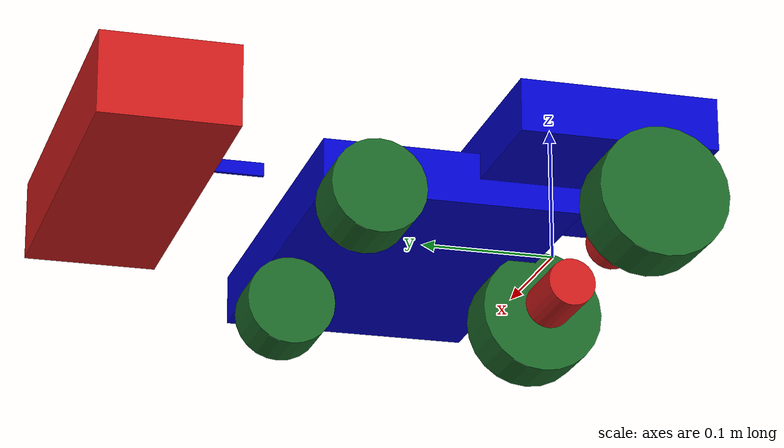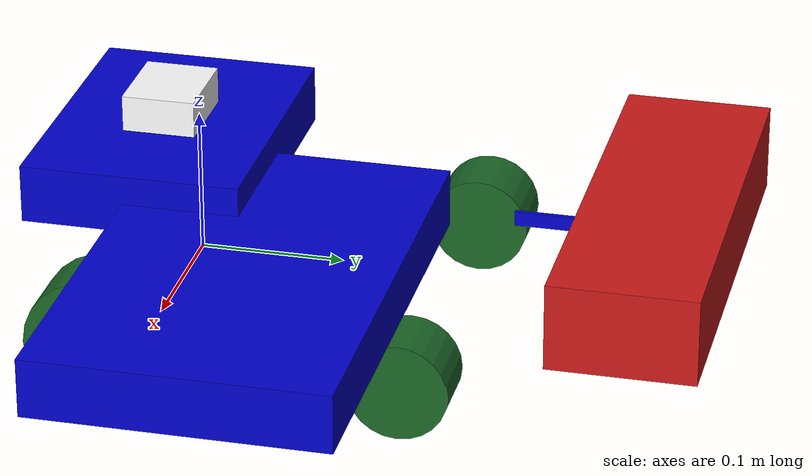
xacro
<?xml version="1.0"?>
<!-- Description of the LEMOWER robot with XACRO to avoid repeating data -->
<robot xmlns:xacro="http://www.ros.org/wiki/xacro"  name="lemower">

    <!-- This will include all the contents of example_include.xacro first. Go check it out! -->
    <xacro:include filename="lemower_include.xacro" />

    <link name="base_link">
    </link>

    <!-- Lien entre base et robot_base l'origine de robot_base est arrière centre bas -->
    <joint name="robot_base_joint" type="fixed">
        <parent link="base_link"/>
        <child link="robot_base"/>
        <origin xyz="0 0.065 0.0365" rpy="0 0 0"/>
    </joint>
    <link name="robot_base">
        <visual>
            <geometry>
                <box size="0.32 0.2 0.04"/>
            </geometry>
            <material name="blue"/>
            <origin xyz="0.16 0.01 0.02" rpy="0 0 0"/>
        </visual>
        <collision>
            <geometry>
                <box size="0.32 0.2 0.04"/>
            </geometry>
        </collision>
        <xacro:inertial_box mass="1.5" x="0.32" y="0.2" z="0.04">
            <origin xyz="0 0 0.02" rpy="0 0 0"/>
        </xacro:inertial_box>
    </link>
    <joint name="base_to_elec" type="fixed">
        <parent link="robot_base"/>
        <child link="electronics"/>
        <origin xyz="0 -0.085 0.04" rpy="0 0 0"/>
    </joint>
    <link name="electronics">
        <visual>
            <geometry>
                <box size="0.2 0.15 0.04"/>
            </geometry>
            <origin xyz="0 0 0" rpy="0 0 0"/>
            <material name="blue"/>
        </visual>
        <collision>
            <origin xyz="0 0 0" rpy="0 0 0"/>
            <geometry>
                <box size="0.2 0.15 0.04"/>
            </geometry>
        </collision>
        <xacro:inertial_box mass="0.4" x="0.2" y="0.15" z="0.04">
            <origin xyz="0 0 0.02" rpy="0 0 0"/>
        </xacro:inertial_box>
    </link>
    <joint name="elec_to_lidar" type="fixed">
        <parent link="electronics"/>
        <child link="lidar"/>
        <origin xyz="0 0 0.03" rpy="0 0 0"/>
    </joint>
    <link name="lidar">
        <visual>
            <geometry>
                <box size="0.06 0.05 0.03"/>
            </geometry>
            <origin xyz="0 0 0" rpy="0 0 0"/>
            <material name="black"/>
        </visual>
        <collision>
            <origin xyz="0 0 0" rpy="0 0 0"/>
            <geometry>
                <box size="0.06 0.05 0.03"/>
            </geometry>
        </collision>
        <xacro:inertial_box mass="0.1" x="0.06" y="0.05" z="0.03">
            <origin xyz="0 0 0.075" rpy="0 0 0"/>
        </xacro:inertial_box>
    </link>
    <joint name="robot_base_to_bras_decoupe" type="revolute">
        <parent link="robot_base"/>
        <child link="bras decoupe"/>
        <origin xyz="0 0.160 0.01" rpy="0 0 0"/>
        <limit effort="1000.0" lower="-0.548" upper="0.548" velocity="0.5"/>
        <axis xyz="1 0 0"/>
    </joint>
    <link name="bras decoupe">
        <visual>
            <geometry>
                <box size="0.003 0.06 0.01"/>
            </geometry>
            <origin xyz="0 0.025 0" rpy="0 0 0"/>
            <material name="blue"/>
        </visual>
        <collision>
            <origin xyz="0 0.025 0" rpy="0 0 0"/>
            <geometry>
                <box size="0.003 0.06 0.01"/>
            </geometry>
        </collision>
        <xacro:inertial_box mass="0.05" x="0.003" y="0.06" z="0.01">
            <origin xyz="0.0015 0.03 0.005" rpy="0 0 0"/>
        </xacro:inertial_box>
    </link>
    <joint name="bras_decoupe_to_decoupe" type="revolute">
        <parent link="bras decoupe"/>
        <child link="decoupe"/>
        <axis xyz="1 0 0"/>
        <origin xyz="0 0.05 0" rpy="0 0 0"/>
        <limit effort="1000.0" lower="-0.548" upper="0.548" velocity="0.5"/>
    </joint>
    <link name="decoupe">
        <visual>
            <geometry>
                <box size="0.3 0.1 0.06"/>
            </geometry>
            <origin xyz="0 0.045 0" rpy="0 0 0"/>
            <material name="red"/>
        </visual>
        <collision>
            <origin xyz="0 0.045 0" rpy="0 0 0"/>
            <geometry>
                <box size="0.3 0.1 0.06"/>
            </geometry>
        </collision>
        <xacro:inertial_box mass="0.5" x="0.3" y="0.1" z="0.06">
            <origin xyz="0.15 0.05 0.03" rpy="0 0 0"/>
        </xacro:inertial_box>
    </link>
    <joint name="robot_base_to_motor_gauche" type="fixed">
        <parent link="robot_base"/>
        <child link="motor gauche"/>
        <origin xyz="-0.07 -0.095 -0.039" rpy="0 1.5708 0"/>
    </joint>
    <link name="motor gauche">
        <visual>
            <geometry>
                <cylinder length="0.057" radius="0.0185"/>
            </geometry>
            <material name="red"/>
        </visual>
        <collision>
            <geometry>
                <cylinder length="0.057" radius="0.0185"/>
            </geometry>
        </collision>
        <xacro:inertial_cylinder mass="0.15" length="0.057" radius="0.0185">
            <origin xyz="0 0 0" rpy="0 0 0"/>
        </xacro:inertial_cylinder>
    </link>
    <joint name="robot_base_to_motor_droite" type="fixed">
        <parent link="robot_base"/>
        <child link="motor droite"/>
        <origin xyz="0.07 -0.095 -0.039" rpy="0 1.5708 0"/>
    </joint>
    <link name="motor droite">
        <visual>
            <geometry>
                <cylinder length="0.057" radius="0.0185"/>
            </geometry>
            <material name="red"/>
        </visual>
        <collision>
            <geometry>
                <cylinder length="0.057" radius="0.0185"/>
            </geometry>
        </collision>
        <xacro:inertial_cylinder mass="0.15" length="0.057" radius="0.0185">
            <origin xyz="0 0 0" rpy="0 0 0"/>
        </xacro:inertial_cylinder>
    </link>

    <link name="Roue arrière gauche">
        <visual>
            <geometry>
                <cylinder length="0.045" radius="0.048"/>
            </geometry>
            <material name="green"/>
        </visual>
        <collision>
            <geometry>
                <cylinder length="0.045" radius="0.048"/>
            </geometry>
        </collision>
        <xacro:inertial_cylinder mass="0.2" length="0.045" radius="0.048">
            <origin xyz="0 0 0" rpy="0 0 0"/>
        </xacro:inertial_cylinder>
    </link>
    <link name="Roue arrière droite">
        <visual>
            <geometry>
                <cylinder length="0.045" radius="0.048"/>
            </geometry>
            <material name="green"/>
        </visual>
        <collision>
            <geometry>
                <cylinder length="0.045" radius="0.048"/>
            </geometry>
        </collision>
        <xacro:inertial_cylinder mass="0.2" length="0.045" radius="0.048">
            <origin xyz="0 0 0" rpy="0 0 0"/>
        </xacro:inertial_cylinder>
    </link>
    <link name="Roue avant gauche">
        <visual>
            <geometry>
                <cylinder length="0.045" radius="0.034"/>
            </geometry>
            <material name="green"/>
        </visual>
        <collision>
            <geometry>
                <cylinder length="0.045" radius="0.034"/>
            </geometry>
        </collision>
        <xacro:inertial_cylinder mass="0.2" length="0.045" radius="0.034">
            <origin xyz="0 0 0" rpy="0 0 0"/>
        </xacro:inertial_cylinder>
    </link>
    <link name="Roue avant droite">
        <visual>
            <geometry>
                <cylinder length="0.045" radius="0.034"/>
            </geometry>
            <material name="green"/>
        </visual>
        <collision>
            <geometry>
                <cylinder length="0.045" radius="0.034"/>
            </geometry>
        </collision>
        <xacro:inertial_cylinder mass="0.2" length="0.045" radius="0.034">
            <origin xyz="0 0 0" rpy="0 0 0"/>
        </xacro:inertial_cylinder>
    </link>

    <joint name="motor_to_roue_arriere_gauche" type="continuous">
        <parent link="motor gauche"/>
        <child link="Roue arrière gauche"/>
        <origin xyz="0 0 -0.065" rpy="0 0 0"/>
        <axis xyz="0 0 -1"/>
    </joint>
    <joint name="motor_to_roue_arriere_droite" type="continuous">
        <parent link="motor droite"/>
        <child link="Roue arrière droite"/>
        <origin xyz="0 0 0.065" rpy="0 0 0"/>
        <axis xyz="0 0 1"/>
    </joint>
    <joint name="robot_base_to_roue_avant_gauche" type="continuous">
        <parent link="robot_base"/>
        <child link="Roue avant gauche"/>
        <origin xyz="-0.125 0.108 -0.0515" rpy="0 1.5708 0"/>
        <axis xyz="0 0 -1"/>
    </joint>
    <joint name="robot_base_to_roue_avant_droite" type="continuous">
        <parent link="robot_base"/>
        <child link="Roue avant droite"/>
        <origin xyz="0.125 0.108 -0.0515" rpy="0 1.5708 0"/>
        <axis xyz="0 0 1"/>
    </joint>

    <xacro:include filename="lemower_gazebo.xacro" />
</robot>

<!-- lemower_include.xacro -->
<robot xmlns:xacro="http://www.ros.org/wiki/xacro" >

    <!-- This file is not a robot in and of itself, it just contains some useful tags that could be included in any robot -->

    <!-- Specify some colours -->

    <material name="white">
        <color rgba="1 1 1 1"/>
    </material>

    <material name="orange">
        <color rgba="1 0.3 0.1 1"/>
    </material>

    <material name="blue">
        <color rgba="0 0 .8 1"/>
    </material>

    <material name="black">
        <color rgba="1 1 1 1"/>
    </material>

    <material name="red">
        <color rgba="0.8 0.1 0.1 1"/>
    </material>

    <material name="green">
        <color rgba=".1 .4 .15 1"/>
    </material>

    <!-- Specify some standard inertial calculations https://en.wikipedia.org/wiki/List_of_moments_of_inertia -->
    <!-- These make use of xacro's mathematical functionality -->

    <xacro:macro name="inertial_sphere" params="mass radius *origin">
        <inertial>
            <xacro:insert_block name="origin"/>
            <mass value="${mass}" />
            <inertia ixx="${(2/5) * mass * (radius*radius)}" ixy="0.0" ixz="0.0"
                    iyy="${(2/5) * mass * (radius*radius)}" iyz="0.0"
                    izz="${(2/5) * mass * (radius*radius)}" />
        </inertial>
    </xacro:macro>

    <xacro:macro name="inertial_box" params="mass x y z *origin">
        <inertial>
            <xacro:insert_block name="origin"/>
            <mass value="${mass}" />
            <inertia ixx="${(1/12) * mass * (y*y+z*z)}" ixy="0.0" ixz="0.0"
                    iyy="${(1/12) * mass * (x*x+z*z)}" iyz="0.0"
                    izz="${(1/12) * mass * (x*x+y*y)}" />
        </inertial>
    </xacro:macro>

    <xacro:macro name="inertial_cylinder" params="mass length radius *origin">
        <inertial>
            <xacro:insert_block name="origin"/>
            <mass value="${mass}" />
            <inertia ixx="${(1/12) * mass * (3*radius*radius + length*length)}" ixy="0.0" ixz="0.0"
                    iyy="${(1/12) * mass * (3*radius*radius + length*length)}" iyz="0.0"
                    izz="${(1/2) * mass * (radius*radius)}" />
        </inertial>
    </xacro:macro>
</robot>
